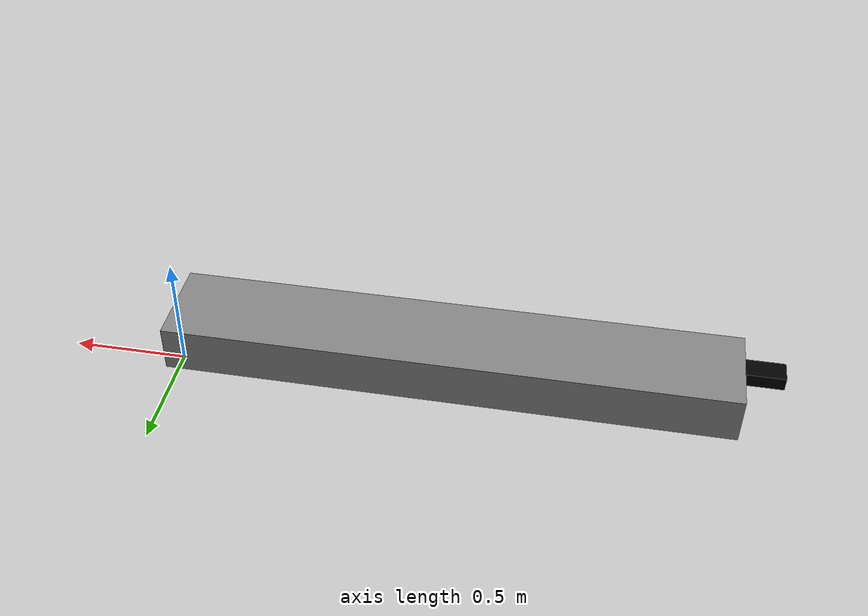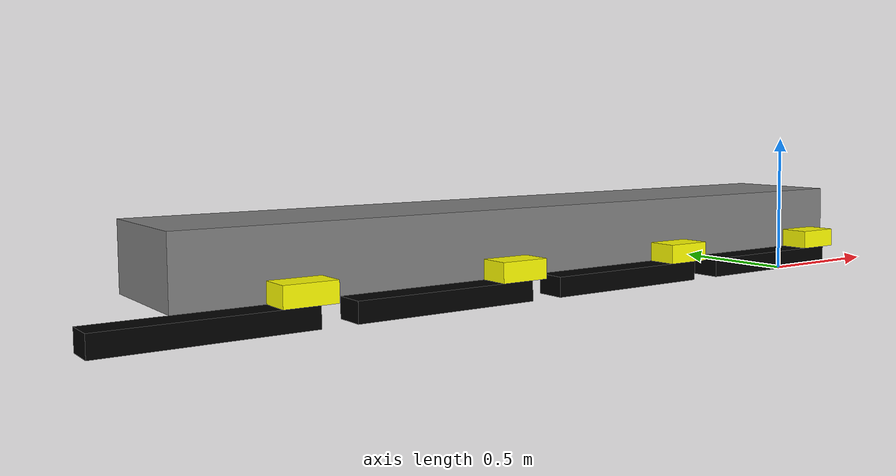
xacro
<?xml version="1.0"?>
<robot xmlns:xacro="http://www.ros.org/wiki/xacro" name="my_conveyor_belt_robot">

    <xacro:property name="base_length" value="2.4"/>
    <xacro:property name="base_width" value="0.4"/>
    <xacro:property name="base_height" value="0.2"/>
    <xacro:property name="axle_length" value="0.15"/>
    <xacro:property name="axle_width" value="0.10"/>
    <xacro:property name="axle_height" value="0.06"/>
    <xacro:property name="arm_length" value="0.55"/>
    <xacro:property name="arm_width" value="0.10"/>
    <xacro:property name="arm_height" value="0.06"/>
    <xacro:property name="axle_spacing" value="0.65"/>
    <xacro:property name="pi_" value="3.14159265359"/>

    <!-- Materials -->
    <material name="gray">
        <color rgba="0.5 0.5 0.5 1.0"/>
    </material>
    <material name="yellow">
        <color rgba="1.0 1.0 0.0 1.0"/>
    </material>
    <material name="black">
        <color rgba="0.0 0.0 0.0 1.0"/>
    </material>

    <!-- Macros for Links -->
    <xacro:macro name="box_link" params="name length width height material">
        <link name="${name}">
            <visual>
                <geometry>
                    <box size="${length} ${width} ${height}"/>
                </geometry>
                <origin rpy="0 0 0" xyz="${-length/2} 0 0"/>
                <material name="${material}"/>
            </visual>
            <collision>
                <geometry>
                    <box size="${length} ${width} ${height}"/>
                </geometry>
                <origin rpy="0 0 0" xyz="${-length/4} 0 0"/>
            </collision>
            <inertial> <mass value="0.1"/> <inertia ixx="0.001" ixy="0" ixz="0" iyy="0.001" iyz="0" izz="0.001"/> </inertial>
        </link>
    </xacro:macro>

    <!-- Macros for Joints -->
    <xacro:macro name="fixed_joint" params="name parent child x y z">
        <joint name="${name}" type="fixed">
            <parent link="${parent}"/>
            <child link="${child}"/>
            <origin xyz="${x} ${y} ${z}" rpy="0 0 0"/>
        </joint>
    </xacro:macro>

    <xacro:macro name="revolute_joint" params="name parent child x y z rpy lower_limit upper_limit axis">
         <joint name="${name}" type="revolute">
            <parent link="${parent}"/>
            <child link="${child}"/>
            <origin xyz="${x} ${y} ${z}" rpy="${rpy}"/>
            <axis xyz="${axis}"/>
            <limit lower="${lower_limit}" upper="${upper_limit}" effort="100" velocity="2"/>
        </joint>
    </xacro:macro>

    <!-- World Link and Joint to ground the robot -->
    <link name="world"/>
    <joint name="world_joint" type="fixed">
        <parent link="world"/>
        <child link="base_link"/>

        <origin xyz="0 0 ${arm_height + axle_height + base_height/2}" rpy="0 0 0"/>
    </joint>

    <!-- Base Link -->
    <xacro:box_link name="base_link" length="${base_length}" width="${base_width}" height="${base_height}" material="gray"/>

    <!-- Macro for Axle and Bar unit -->
    <xacro:macro name="axle_and_arm" params="index">

        <xacro:property name="x_pos" value="${-base_length + axle_spacing * (index + 0.6)}"/>

        <xacro:box_link name="axle_${index}" length="${axle_length}" width="${axle_width}" height="${axle_height}" material="yellow"/>

        <xacro:fixed_joint name="base_to_axle_${index}" parent="base_link" child="axle_${index}"
                           x="${x_pos}" y="${-base_width/2 - axle_width/2}" z="${-base_height/2 + axle_height/2}"/>

        <!-- Arm (Box) Link -->
        <xacro:box_link name="arm_${index}" length="${arm_length}" width="${arm_width}" height="${arm_height}" material="black"/>

        <!-- Joint: Axle Link to Bar Link (Revolute) -->
        <xacro:revolute_joint name="axle_${index}_to_arm_${index}"
                              parent="axle_${index}"
                              child="arm_${index}"
                              x="${-axle_length/3}"
                              y="0"
                              z="${-axle_height}"
                              rpy="0 0 0"
                              lower_limit="0"
                              upper_limit="${pi_/4}"
                              axis="0 0 1"
                              />
    </xacro:macro>

    <!-- Create 4 units -->
    <xacro:axle_and_arm index="0"/>
    <xacro:axle_and_arm index="1"/>
    <xacro:axle_and_arm index="2"/>
    <xacro:axle_and_arm index="3"/>

<!-- Plugin Gazebo Classic -->
  <gazebo>
    <plugin name="gazebo_ros2_control" filename="libgazebo_ros2_control.so">
      <robot_namespace>my_conveyor_belt_robot</robot_namespace>
      <parameters>/home/admin1/ros2_ws/install/my_conveyor_gazebo/share/my_conveyor_gazebo/config/controllers.yaml</parameters>
    </plugin>
  </gazebo>

  <!-- ROS 2 Control hardware interface -->
  <ros2_control name="GazeboSystem" type="system">
    <hardware>
      <plugin>gazebo_ros2_control/GazeboSystem</plugin>
    </hardware>
    <joint name="axle_0_to_arm_0">
      <command_interface name="position"/>
      <state_interface name="position"/>
      <state_interface name="velocity"/>
    </joint>
    <joint name="axle_1_to_arm_1">
      <command_interface name="position"/>
      <state_interface name="position"/>
      <state_interface name="velocity"/>
    </joint>
    <joint name="axle_2_to_arm_2">
      <command_interface name="position"/>
      <state_interface name="position"/>
      <state_interface name="velocity"/>
    </joint>
    <joint name="axle_3_to_arm_3">
      <command_interface name="position"/>
      <state_interface name="position"/>
      <state_interface name="velocity"/>
    </joint>
  </ros2_control>

  <!-- Gazebo Material -->
  <gazebo reference="base_link">
    <material>Gazebo/Grey</material>
  </gazebo>
  <gazebo reference="axle_0">
    <material>Gazebo/Yellow</material>
  </gazebo>
  <gazebo reference="axle_1">
    <material>Gazebo/Yellow</material>
  </gazebo>
  <gazebo reference="axle_2">
    <material>Gazebo/Yellow</material>
  </gazebo>
  <gazebo reference="axle_3">
    <material>Gazebo/Yellow</material>
  </gazebo>
  <gazebo reference="arm_0">
    <material>Gazebo/Black</material>
  </gazebo>
  <gazebo reference="arm_1">
    <material>Gazebo/Black</material>
  </gazebo>
  <gazebo reference="arm_2">
    <material>Gazebo/Black</material>
  </gazebo>
  <gazebo reference="arm_3">
    <material>Gazebo/Black</material>
  </gazebo>

</robot>
